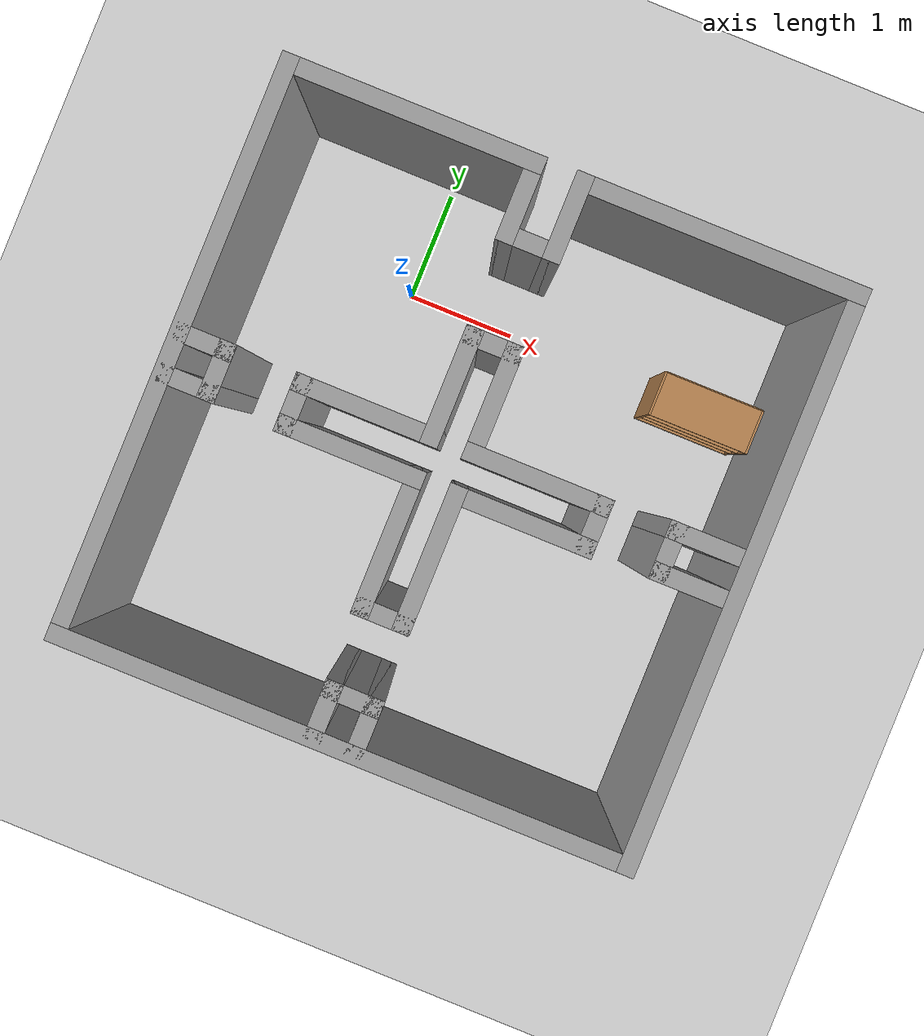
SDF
<sdf version="1.6">
 <world name="default">
  <light name="sun" type="directional">
   <pose>0 0 10 0 -0 0</pose>
   <diffuse>0.8 0.8 0.8 1</diffuse>
   <specular>0.2 0.2 0.2 1</specular>
   <attenuation>
    <range>1000</range>
    <constant>0.9</constant>
    <linear>0.01</linear>
    <quadratic>0.001</quadratic>
   </attenuation>
   <direction>-0.5 0.1 -0.9</direction>
  </light>
  <model name="ground_plane">
   <static>1</static>
   <link name="link">
    <collision name="collision">
     <geometry><plane><normal>0 0 1</normal><size>100 100</size></plane></geometry>
     <surface>
      <contact><collide_bitmask>65535</collide_bitmask></contact>
      <friction><ode><mu>100</mu><mu2>50</mu2></ode></friction>
     </surface>
    </collision>
    <visual name="visual">
     <cast_shadows>0</cast_shadows>
     <geometry><plane><normal>0 0 1</normal><size>100 100</size></plane></geometry>
     <material>
      <script><uri>file://media/materials/scripts/gazebo.material</uri><name>Gazebo/Grey</name></script>
     </material>
    </visual>
   </link>
  </model>
  <gravity>0 0 -9.8</gravity>
  <magnetic_field>6e-06 2.3e-05 -4.2e-05</magnetic_field>
  <atmosphere type="adiabatic"/>
  <physics name="default_physics" default="0" type="ode">
   <max_step_size>0.001</max_step_size>
   <real_time_factor>1</real_time_factor>
   <real_time_update_rate>1000</real_time_update_rate>
  </physics>
  <scene><ambient>0.4 0.4 0.4 1</ambient><background>0.7 0.7 0.7 1</background><shadows>1</shadows></scene>
  <audio><device>default</device></audio>
  <spherical_coordinates>
   <surface_model>EARTH_WGS84</surface_model>
   <latitude_deg>0</latitude_deg>
   <longitude_deg>0</longitude_deg>
   <elevation>0</elevation>
   <heading_deg>0</heading_deg>
  </spherical_coordinates>
  <model name="Rooms4">
   <pose>0.991792 -1.28692 0 0 -0 0</pose>
   <link name="Wall_10">
    <collision name="Wall_10_Collision">
     <geometry><box><size>0.5 0.15 2.5</size></box></geometry>
     <pose>0 0 1.25 0 -0 0</pose>
    </collision>
    <visual name="Wall_10_Visual">
     <pose>0 0 1.25 0 -0 0</pose>
     <geometry><box><size>0.5 0.15 2.5</size></box></geometry>
     <material>
      <script><uri>file://media/materials/scripts/gazebo.material</uri><name>Gazebo/Grey</name></script>
      <ambient>1 1 1 1</ambient>
     </material>
     <meta><layer>0</layer></meta>
    </visual>
    <pose>-0.1 -1.325 0 0 -0 0</pose>
   </link>
   <link name="Wall_11">
    <collision name="Wall_11_Collision">
     <geometry><box><size>1.25 0.15 2.5</size></box></geometry>
     <pose>0 0 1.25 0 -0 0</pose>
    </collision>
    <visual name="Wall_11_Visual">
     <pose>0 0 1.25 0 -0 0</pose>
     <geometry><box><size>1.25 0.15 2.5</size></box></geometry>
     <material>
      <script><uri>file://media/materials/scripts/gazebo.material</uri><name>Gazebo/Grey</name></script>
      <ambient>1 1 1 1</ambient>
     </material>
     <meta><layer>0</layer></meta>
    </visual>
    <pose>0.075 -0.775 0 0 -0 1.5708</pose>
   </link>
   <link name="Wall_12">
    <collision name="Wall_12_Collision">
     <geometry><box><size>1.25 0.15 2.5</size></box></geometry>
     <pose>0 0 1.25 0 -0 0</pose>
    </collision>
    <visual name="Wall_12_Visual">
     <pose>0 0 1.25 0 -0 0</pose>
     <geometry><box><size>1.25 0.15 2.5</size></box></geometry>
     <material>
      <script><uri>file://media/materials/scripts/gazebo.material</uri><name>Gazebo/Grey</name></script>
      <ambient>1 1 1 1</ambient>
     </material>
     <meta><layer>0</layer></meta>
    </visual>
    <pose>0.625 -0.225 0 0 -0 0</pose>
   </link>
   <link name="Wall_13">
    <collision name="Wall_13_Collision">
     <geometry><box><size>0.5 0.15 2.5</size></box></geometry>
     <pose>0 0 1.25 0 -0 0</pose>
    </collision>
    <visual name="Wall_13_Visual">
     <pose>0 0 1.25 0 -0 0</pose>
     <geometry><box><size>0.5 0.15 2.5</size></box></geometry>
     <material>
      <script><uri>file://media/materials/scripts/gazebo.material</uri><name>Gazebo/Grey</name></script>
      <ambient>1 1 1 1</ambient>
     </material>
     <meta><layer>0</layer></meta>
    </visual>
    <pose>1.175 -0.05 0 0 -0 1.5708</pose>
   </link>
   <link name="Wall_15">
    <collision name="Wall_15_Collision">
     <geometry><box><size>1.25 0.15 2.5</size></box></geometry>
     <pose>0 0 1.25 0 -0 0</pose>
    </collision>
    <visual name="Wall_15_Visual">
     <pose>0 0 1.25 0 -0 0</pose>
     <geometry><box><size>1.25 0.15 2.5</size></box></geometry>
     <material>
      <script><uri>file://media/materials/scripts/gazebo.material</uri><name>Gazebo/Grey</name></script>
      <ambient>1 1 1 1</ambient>
     </material>
     <meta><layer>0</layer></meta>
    </visual>
    <pose>0.625 0.125 0 0 -0 3.14159</pose>
   </link>
   <link name="Wall_20">
    <collision name="Wall_20_Collision">
     <geometry><box><size>0.75 0.15 2.5</size></box></geometry>
     <pose>0 0 1.25 0 -0 0</pose>
    </collision>
    <visual name="Wall_20_Visual">
     <pose>0 0 1.25 0 -0 0</pose>
     <geometry><box><size>0.75 0.15 2.5</size></box></geometry>
     <material>
      <script><uri>file://media/materials/scripts/gazebo.material</uri><name>Gazebo/Grey</name></script>
      <ambient>1 1 1 1</ambient>
     </material>
     <meta><layer>0</layer></meta>
    </visual>
    <pose>0.075 2.125 0 0 -0 1.5708</pose>
   </link>
   <link name="Wall_21">
    <collision name="Wall_21_Collision">
     <geometry><box><size>2.5 0.15 2.5</size></box></geometry>
     <pose>0 0 1.25 0 -0 0</pose>
    </collision>
    <visual name="Wall_21_Visual">
     <pose>0 0 1.25 0 -0 0</pose>
     <geometry><box><size>2.5 0.15 2.5</size></box></geometry>
     <material>
      <script><uri>file://media/materials/scripts/gazebo.material</uri><name>Gazebo/Grey</name></script>
      <ambient>1 1 1 1</ambient>
     </material>
     <meta><layer>0</layer></meta>
    </visual>
    <pose>1.25 2.425 0 0 -0 0</pose>
   </link>
   <link name="Wall_22">
    <collision name="Wall_22_Collision">
     <geometry><box><size>5 0.15 2.5</size></box></geometry>
     <pose>0 0 1.25 0 -0 0</pose>
    </collision>
    <visual name="Wall_22_Visual">
     <pose>0 0 1.25 0 -0 0</pose>
     <geometry><box><size>5 0.15 2.5</size></box></geometry>
     <material>
      <script><uri>file://media/materials/scripts/gazebo.material</uri><name>Gazebo/Grey</name></script>
      <ambient>1 1 1 1</ambient>
     </material>
     <meta><layer>0</layer></meta>
    </visual>
    <pose>2.425 0 0 0 -0 -1.5708</pose>
   </link>
   <link name="Wall_23">
    <collision name="Wall_23_Collision">
     <geometry><box><size>5 0.15 2.5</size></box></geometry>
     <pose>0 0 1.25 0 -0 0</pose>
    </collision>
    <visual name="Wall_23_Visual">
     <pose>0 0 1.25 0 -0 0</pose>
     <geometry><box><size>5 0.15 2.5</size></box></geometry>
     <material>
      <script><uri>file://media/materials/scripts/gazebo.material</uri><name>Gazebo/Grey</name></script>
      <ambient>1 1 1 1</ambient>
     </material>
     <meta><layer>0</layer></meta>
    </visual>
    <pose>0 -2.425 0 0 -0 3.14159</pose>
   </link>
   <link name="Wall_24">
    <collision name="Wall_24_Collision">
     <geometry><box><size>5 0.15 2.5</size></box></geometry>
     <pose>0 0 1.25 0 -0 0</pose>
    </collision>
    <visual name="Wall_24_Visual">
     <pose>0 0 1.25 0 -0 0</pose>
     <geometry><box><size>5 0.15 2.5</size></box></geometry>
     <material>
      <script><uri>file://media/materials/scripts/gazebo.material</uri><name>Gazebo/Grey</name></script>
      <ambient>1 1 1 1</ambient>
     </material>
     <meta><layer>0</layer></meta>
    </visual>
    <pose>-2.425 0 0 0 -0 1.5708</pose>
   </link>
   <link name="Wall_25">
    <collision name="Wall_25_Collision">
     <geometry><box><size>2.25 0.15 2.5</size></box></geometry>
     <pose>0 0 1.25 0 -0 0</pose>
    </collision>
    <visual name="Wall_25_Visual">
     <pose>0 0 1.25 0 -0 0</pose>
     <geometry><box><size>2.25 0.15 2.5</size></box></geometry>
     <material>
      <script><uri>file://media/materials/scripts/gazebo.material</uri><name>Gazebo/Grey</name></script>
      <ambient>1 1 1 1</ambient>
     </material>
     <meta><layer>0</layer></meta>
    </visual>
    <pose>-1.375 2.425 0 0 -0 0</pose>
   </link>
   <link name="Wall_26">
    <collision name="Wall_26_Collision">
     <geometry><box><size>0.75 0.15 2.5</size></box></geometry>
     <pose>0 0 1.25 0 -0 0</pose>
    </collision>
    <visual name="Wall_26_Visual">
     <pose>0 0 1.25 0 -0 0</pose>
     <geometry><box><size>0.75 0.15 2.5</size></box></geometry>
     <material>
      <script><uri>file://media/materials/scripts/gazebo.material</uri><name>Gazebo/Grey</name></script>
      <ambient>1 1 1 1</ambient>
     </material>
     <meta><layer>0</layer></meta>
    </visual>
    <pose>-0.325 2.125 0 0 -0 -1.5708</pose>
   </link>
   <link name="Wall_27">
    <collision name="Wall_27_Collision">
     <geometry><box><size>0.55 0.15 2.5</size></box></geometry>
     <pose>0 0 1.25 0 -0 0</pose>
    </collision>
    <visual name="Wall_27_Visual">
     <pose>0 0 1.25 0 -0 0</pose>
     <geometry><box><size>0.55 0.15 2.5</size></box></geometry>
     <material>
      <script><uri>file://media/materials/scripts/gazebo.material</uri><name>Gazebo/Grey</name></script>
      <ambient>1 1 1 1</ambient>
     </material>
     <meta><layer>0</layer></meta>
    </visual>
    <pose>-0.125 1.825 0 0 -0 0</pose>
   </link>
   <link name="Wall_29">
    <collision name="Wall_29_Collision">
     <geometry><box><size>0.75 0.15 2.5</size></box></geometry>
     <pose>0 0 1.25 0 -0 0</pose>
    </collision>
    <visual name="Wall_29_Visual">
     <pose>0 0 1.25 0 -0 0</pose>
     <geometry><box><size>0.75 0.15 2.5</size></box></geometry>
     <material>
      <script><uri>file://media/materials/scripts/gazebo.material</uri><name>Gazebo/Grey</name></script>
      <ambient>1 1 1 1</ambient>
     </material>
     <meta><layer>0</layer></meta>
    </visual>
    <pose>2.09296 0.157714 0 0 -0 3.14159</pose>
   </link>
   <link name="Wall_3">
    <collision name="Wall_3_Collision">
     <geometry><box><size>1 0.15 2.5</size></box></geometry>
     <pose>0 0 1.25 0 -0 0</pose>
    </collision>
    <visual name="Wall_3_Visual">
     <pose>0 0 1.25 0 -0 0</pose>
     <geometry><box><size>1 0.15 2.5</size></box></geometry>
     <material>
      <script><uri>file://media/materials/scripts/gazebo.material</uri><name>Gazebo/Grey</name></script>
      <ambient>1 1 1 1</ambient>
     </material>
     <meta><layer>0</layer></meta>
    </visual>
    <pose>0.075 0.55 0 0 -0 1.5708</pose>
   </link>
   <link name="Wall_30">
    <collision name="Wall_30_Collision">
     <geometry><box><size>0.5 0.15 2.5</size></box></geometry>
     <pose>0 0 1.25 0 -0 0</pose>
    </collision>
    <visual name="Wall_30_Visual">
     <pose>0 0 1.25 0 -0 0</pose>
     <geometry><box><size>0.5 0.15 2.5</size></box></geometry>
     <material>
      <script><uri>file://media/materials/scripts/gazebo.material</uri><name>Gazebo/Grey</name></script>
      <ambient>1 1 1 1</ambient>
     </material>
     <meta><layer>0</layer></meta>
    </visual>
    <pose>1.79296 -0.017286 0 0 -0 -1.5708</pose>
   </link>
   <link name="Wall_31">
    <collision name="Wall_31_Collision">
     <geometry><box><size>0.75 0.15 2.5</size></box></geometry>
     <pose>0 0 1.25 0 -0 0</pose>
    </collision>
    <visual name="Wall_31_Visual">
     <pose>0 0 1.25 0 -0 0</pose>
     <geometry><box><size>0.75 0.15 2.5</size></box></geometry>
     <material>
      <script><uri>file://media/materials/scripts/gazebo.material</uri><name>Gazebo/Grey</name></script>
      <ambient>1 1 1 1</ambient>
     </material>
     <meta><layer>0</layer></meta>
    </visual>
    <pose>2.09296 -0.192286 0 0 -0 0</pose>
   </link>
   <link name="Wall_33">
    <collision name="Wall_33_Collision">
     <geometry><box><size>0.5 0.15 2.5</size></box></geometry>
     <pose>0 0 1.25 0 -0 0</pose>
    </collision>
    <visual name="Wall_33_Visual">
     <pose>0 0 1.25 0 -0 0</pose>
     <geometry><box><size>0.5 0.15 2.5</size></box></geometry>
     <material>
      <script><uri>file://media/materials/scripts/gazebo.material</uri><name>Gazebo/Grey</name></script>
      <ambient>1 1 1 1</ambient>
     </material>
     <meta><layer>0</layer></meta>
    </visual>
    <pose>-0.253364 -2.19194 0 0 -0 1.5708</pose>
   </link>
   <link name="Wall_34">
    <collision name="Wall_34_Collision">
     <geometry><box><size>0.5 0.15 2.5</size></box></geometry>
     <pose>0 0 1.25 0 -0 0</pose>
    </collision>
    <visual name="Wall_34_Visual">
     <pose>0 0 1.25 0 -0 0</pose>
     <geometry><box><size>0.5 0.15 2.5</size></box></geometry>
     <material>
      <script><uri>file://media/materials/scripts/gazebo.material</uri><name>Gazebo/Grey</name></script>
      <ambient>1 1 1 1</ambient>
     </material>
     <meta><layer>0</layer></meta>
    </visual>
    <pose>-0.078364 -2.01694 0 0 -0 0</pose>
   </link>
   <link name="Wall_35">
    <collision name="Wall_35_Collision">
     <geometry><box><size>0.5 0.15 2.5</size></box></geometry>
     <pose>0 0 1.25 0 -0 0</pose>
    </collision>
    <visual name="Wall_35_Visual">
     <pose>0 0 1.25 0 -0 0</pose>
     <geometry><box><size>0.5 0.15 2.5</size></box></geometry>
     <material>
      <script><uri>file://media/materials/scripts/gazebo.material</uri><name>Gazebo/Grey</name></script>
      <ambient>1 1 1 1</ambient>
     </material>
     <meta><layer>0</layer></meta>
    </visual>
    <pose>0.096636 -2.19194 0 0 -0 -1.5708</pose>
   </link>
   <link name="Wall_37">
    <collision name="Wall_37_Collision">
     <geometry><box><size>0.5 0.15 2.5</size></box></geometry>
     <pose>0 0 1.25 0 -0 0</pose>
    </collision>
    <visual name="Wall_37_Visual">
     <pose>0 0 1.25 0 -0 0</pose>
     <geometry><box><size>0.5 0.15 2.5</size></box></geometry>
     <material>
      <script><uri>file://media/materials/scripts/gazebo.material</uri><name>Gazebo/Grey</name></script>
      <ambient>1 1 1 1</ambient>
     </material>
     <meta><layer>0</layer></meta>
    </visual>
    <pose>-2.20759 0.142505 0 0 -0 0</pose>
   </link>
   <link name="Wall_38">
    <collision name="Wall_38_Collision">
     <geometry><box><size>0.5 0.15 2.5</size></box></geometry>
     <pose>0 0 1.25 0 -0 0</pose>
    </collision>
    <visual name="Wall_38_Visual">
     <pose>0 0 1.25 0 -0 0</pose>
     <geometry><box><size>0.5 0.15 2.5</size></box></geometry>
     <material>
      <script><uri>file://media/materials/scripts/gazebo.material</uri><name>Gazebo/Grey</name></script>
      <ambient>1 1 1 1</ambient>
     </material>
     <meta><layer>0</layer></meta>
    </visual>
    <pose>-2.03259 -0.032495 0 0 -0 -1.5708</pose>
   </link>
   <link name="Wall_39">
    <collision name="Wall_39_Collision">
     <geometry><box><size>0.5 0.15 2.5</size></box></geometry>
     <pose>0 0 1.25 0 -0 0</pose>
    </collision>
    <visual name="Wall_39_Visual">
     <pose>0 0 1.25 0 -0 0</pose>
     <geometry><box><size>0.5 0.15 2.5</size></box></geometry>
     <material>
      <script><uri>file://media/materials/scripts/gazebo.material</uri><name>Gazebo/Grey</name></script>
      <ambient>1 1 1 1</ambient>
     </material>
     <meta><layer>0</layer></meta>
    </visual>
    <pose>-2.20759 -0.207495 0 0 -0 3.14159</pose>
   </link>
   <link name="Wall_4">
    <collision name="Wall_4_Collision">
     <geometry><box><size>0.5 0.15 2.5</size></box></geometry>
     <pose>0 0 1.25 0 -0 0</pose>
    </collision>
    <visual name="Wall_4_Visual">
     <pose>0 0 1.25 0 -0 0</pose>
     <geometry><box><size>0.5 0.15 2.5</size></box></geometry>
     <material>
      <script><uri>file://media/materials/scripts/gazebo.material</uri><name>Gazebo/Grey</name></script>
      <ambient>1 1 1 1</ambient>
     </material>
     <meta><layer>0</layer></meta>
    </visual>
    <pose>-0.1 0.975 0 0 -0 3.14159</pose>
   </link>
   <link name="Wall_5">
    <collision name="Wall_5_Collision">
     <geometry><box><size>1 0.15 2.5</size></box></geometry>
     <pose>0 0 1.25 0 -0 0</pose>
    </collision>
    <visual name="Wall_5_Visual">
     <pose>0 0 1.25 0 -0 0</pose>
     <geometry><box><size>1 0.15 2.5</size></box></geometry>
     <material>
      <script><uri>file://media/materials/scripts/gazebo.material</uri><name>Gazebo/Grey</name></script>
      <ambient>1 1 1 1</ambient>
     </material>
     <meta><layer>0</layer></meta>
    </visual>
    <pose>-0.275 0.55 0 0 -0 -1.5708</pose>
   </link>
   <link name="Wall_6">
    <collision name="Wall_6_Collision">
     <geometry><box><size>1.25 0.15 2.5</size></box></geometry>
     <pose>0 0 1.25 0 -0 0</pose>
    </collision>
    <visual name="Wall_6_Visual">
     <pose>0 0 1.25 0 -0 0</pose>
     <geometry><box><size>1.25 0.15 2.5</size></box></geometry>
     <material>
      <script><uri>file://media/materials/scripts/gazebo.material</uri><name>Gazebo/Grey</name></script>
      <ambient>1 1 1 1</ambient>
     </material>
     <meta><layer>0</layer></meta>
    </visual>
    <pose>-0.825 0.125 0 0 -0 3.14159</pose>
   </link>
   <link name="Wall_7">
    <collision name="Wall_7_Collision">
     <geometry><box><size>0.5 0.15 2.5</size></box></geometry>
     <pose>0 0 1.25 0 -0 0</pose>
    </collision>
    <visual name="Wall_7_Visual">
     <pose>0 0 1.25 0 -0 0</pose>
     <geometry><box><size>0.5 0.15 2.5</size></box></geometry>
     <material>
      <script><uri>file://media/materials/scripts/gazebo.material</uri><name>Gazebo/Grey</name></script>
      <ambient>1 1 1 1</ambient>
     </material>
     <meta><layer>0</layer></meta>
    </visual>
    <pose>-1.375 -0.05 0 0 -0 -1.5708</pose>
   </link>
   <link name="Wall_8">
    <collision name="Wall_8_Collision">
     <geometry><box><size>1.25 0.15 2.5</size></box></geometry>
     <pose>0 0 1.25 0 -0 0</pose>
    </collision>
    <visual name="Wall_8_Visual">
     <pose>0 0 1.25 0 -0 0</pose>
     <geometry><box><size>1.25 0.15 2.5</size></box></geometry>
     <material>
      <script><uri>file://media/materials/scripts/gazebo.material</uri><name>Gazebo/Grey</name></script>
      <ambient>1 1 1 1</ambient>
     </material>
     <meta><layer>0</layer></meta>
    </visual>
    <pose>-0.825 -0.225 0 0 -0 0</pose>
   </link>
   <link name="Wall_9">
    <collision name="Wall_9_Collision">
     <geometry><box><size>1.25 0.15 2.5</size></box></geometry>
     <pose>0 0 1.25 0 -0 0</pose>
    </collision>
    <visual name="Wall_9_Visual">
     <pose>0 0 1.25 0 -0 0</pose>
     <geometry><box><size>1.25 0.15 2.5</size></box></geometry>
     <material>
      <script><uri>file://media/materials/scripts/gazebo.material</uri><name>Gazebo/Grey</name></script>
      <ambient>1 1 1 1</ambient>
     </material>
     <meta><layer>0</layer></meta>
    </visual>
    <pose>-0.275 -0.775 0 0 -0 -1.5708</pose>
   </link>
   <static>1</static>
  </model>
  <model name="bookshelf">
   <static>1</static>
   <link name="link">
    <inertial><mass>1</mass></inertial>
    <collision name="back">
     <pose>0 0.005 0.6 0 -0 0</pose>
     <geometry><box><size>0.9 0.01 1.2</size></box></geometry>
    </collision>
    <visual name="visual1">
     <pose>0 0.005 0.6 0 -0 0</pose>
     <geometry><box><size>0.9 0.01 1.2</size></box></geometry>
     <material>
      <script><uri>file://media/materials/scripts/gazebo.material</uri><name>Gazebo/Wood</name></script>
     </material>
    </visual>
    <collision name="left_side">
     <pose>0.45 -0.195 0.6 0 -0 0</pose>
     <geometry><box><size>0.02 0.4 1.2</size></box></geometry>
    </collision>
    <visual name="visual2">
     <pose>0.45 -0.195 0.6 0 -0 0</pose>
     <geometry><box><size>0.02 0.4 1.2</size></box></geometry>
     <material>
      <script><uri>file://media/materials/scripts/gazebo.material</uri><name>Gazebo/Wood</name></script>
     </material>
    </visual>
    <collision name="right_side">
     <pose>-0.45 -0.195 0.6 0 -0 0</pose>
     <geometry><box><size>0.02 0.4 1.2</size></box></geometry>
    </collision>
    <visual name="visual3">
     <pose>-0.45 -0.195 0.6 0 -0 0</pose>
     <geometry><box><size>0.02 0.4 1.2</size></box></geometry>
     <material>
      <script><uri>file://media/materials/scripts/gazebo.material</uri><name>Gazebo/Wood</name></script>
     </material>
    </visual>
    <collision name="bottom">
     <pose>0 -0.195 0.03 0 -0 0</pose>
     <geometry><box><size>0.88 0.4 0.06</size></box></geometry>
    </collision>
    <visual name="visual4">
     <pose>0 -0.195 0.03 0 -0 0</pose>
     <geometry><box><size>0.88 0.4 0.06</size></box></geometry>
     <material>
      <script><uri>file://media/materials/scripts/gazebo.material</uri><name>Gazebo/Wood</name></script>
     </material>
    </visual>
    <collision name="top">
     <pose>0 -0.195 1.19 0 -0 0</pose>
     <geometry><box><size>0.88 0.4 0.02</size></box></geometry>
    </collision>
    <visual name="visual5">
     <pose>0 -0.195 1.19 0 -0 0</pose>
     <geometry><box><size>0.88 0.4 0.02</size></box></geometry>
     <material>
      <script><uri>file://media/materials/scripts/gazebo.material</uri><name>Gazebo/Wood</name></script>
     </material>
    </visual>
    <collision name="low_shelf">
     <pose>0 -0.195 0.43 0 -0 0</pose>
     <geometry><box><size>0.88 0.4 0.02</size></box></geometry>
    </collision>
    <visual name="visual6">
     <pose>0 -0.195 0.43 0 -0 0</pose>
     <geometry><box><size>0.88 0.4 0.02</size></box></geometry>
     <material>
      <script><uri>file://media/materials/scripts/gazebo.material</uri><name>Gazebo/Wood</name></script>
     </material>
    </visual>
    <collision name="high_shelf">
     <pose>0 -0.195 0.8 0 -0 0</pose>
     <geometry><box><size>0.88 0.4 0.02</size></box></geometry>
    </collision>
    <visual name="visual7">
     <pose>0 -0.195 0.8 0 -0 0</pose>
     <geometry><box><size>0.88 0.4 0.02</size></box></geometry>
     <material>
      <script><uri>file://media/materials/scripts/gazebo.material</uri><name>Gazebo/Wood</name></script>
     </material>
    </visual>
   </link>
   <pose>2.80866 0.126229 0 0 -0 0</pose>
  </model>
 </world>
</sdf>
